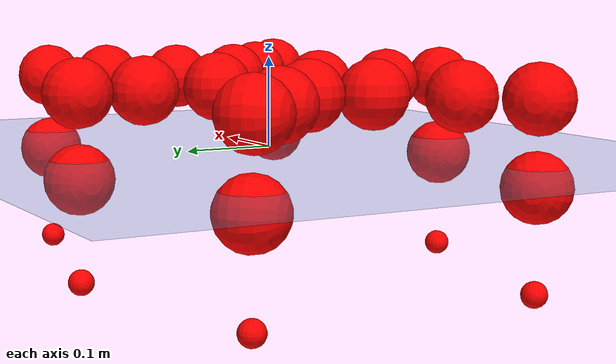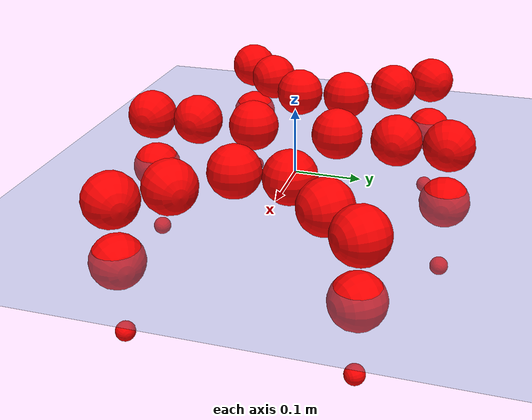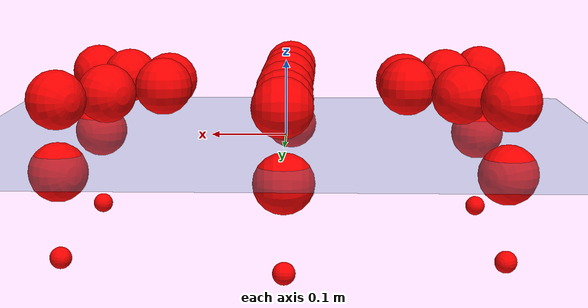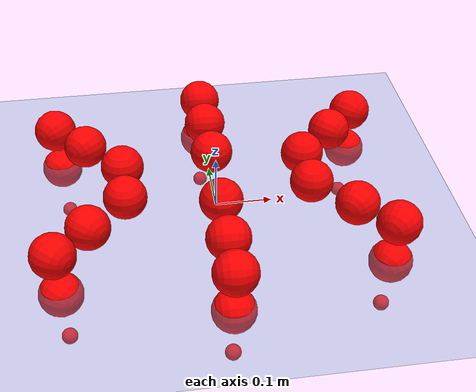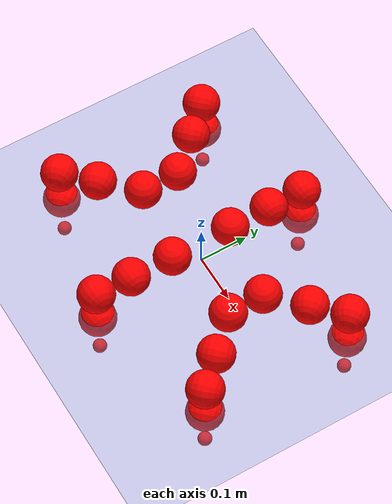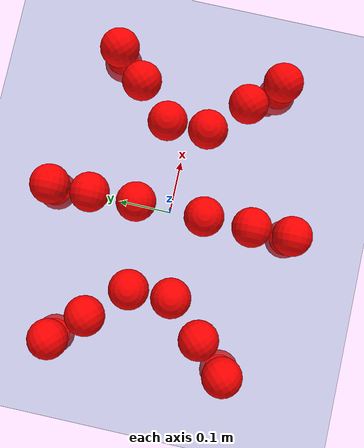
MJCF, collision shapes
<mujoco model="Golem">
  <compiler angle="radian" assetdir="assets" balanceinertia="true" inertiafromgeom="false"/>

  <option timestep="0.005" density="1.2" viscosity="2e-05"/>

  <size nkey="1"/>

  <visual>
    <quality shadowsize="8192"/>
    <map shadowclip="0.5"/>
  </visual>

  <default>
    <default class="/">
      <joint armature="0.01" damping="0.01" frictionloss="0.01"/>
      <geom contype="0" conaffinity="0" group="1" solref="-1000 -80"/>
      <site size="0.01 0.005 0.005" group="5"/>
      <general forcelimited="true" biastype="affine" gainprm="25" biasprm="0 -25 -0.5"/>
      <default class="visual">
        <geom type="mesh" group="2"/>
      </default>
      <default class="collision">
        <geom group="3"/>
      </default>
      <default class="foot">
        <geom size="0.01 0 0" condim="6" group="4" priority="1" solimp="0.015 1 0.01"/>
      </default>
      <default class="reward_collision_sphere">
        <geom group="5" rgba="1 0 0 1"/>
      </default>
    </default>
  </default>

  <asset>
    <texture type="skybox" colorspace="auto" name="//unnamed_texture_0" builtin="gradient" rgb1="0.95 0.95 0.95" rgb2="0.95 0.95 0.95" width="100" height="600"/>
    <texture type="2d" colorspace="auto" name="texplane" builtin="checker" rgb1="0.345 0.575 0.748" rgb2="0.345 0.575 0.748" markrgb="1 1 1" width="512" height="512"/>
    <material name="MatPlane" class="/" texture="texplane" texuniform="true" texrepeat="2 2" specular="0.9"/>
    <mesh name="body" class="/" file="body.stl" scale="0.001 0.001 0.001"/>
    <mesh name="coxa" class="/" file="coxa.stl" scale="0.001 0.001 0.001"/>
    <mesh name="femur" class="/" file="femur.stl" scale="0.001 0.001 0.001"/>
    <mesh name="tibia" class="/" file="tibia.stl" scale="0.001 0.001 0.001"/>
    <mesh name="tarsus" class="/" file="tarsus.stl" scale="0.001 0.001 0.001"/>
  </asset>

  <worldbody>
    <geom name="floor" class="/" size="100 100 0.125" type="plane" group="0" material="MatPlane"/>
    <light name="toplight_shadow" class="/" pos="0 0 5" dir="0.0990148 0.0990148 -0.990148" type="directional" ambient="0.04 0.04 0.04" diffuse="0.55 0.55 0.55" specular="0.12 0.12 0.12"/>
    <light name="toplight_fill" class="/" pos="0 0 5" dir="0.0990148 0.0990148 -0.990148" type="directional" castshadow="false" ambient="0.04 0.04 0.04" diffuse="0.3 0.3 0.3" specular="0.08 0.08 0.08"/>
    <body name="trunk" pos="0.000910306 0.00089129 0.000452971" quat="1 -3.95052e-05 2.14594e-05 0.000214336">
      <inertial pos="-0.000599528 -3.57705e-05 -0.00445204" quat="0.99999 -0.00205121 0.00271362 -0.00299884" mass="2.99009" diaginertia="0.0107799 0.00186273 0.0136043"/>
      <joint name="//unnamed_joint_0" type="free"/>
      <geom name="//unnamed_geom_1" class="/" pos="0 0 0.0683003" quat="1 0 0 0" type="mesh" rgba="0.9 0.9 0.9 1" mesh="body"/>
      <site name="imu" class="/" pos="0.130086 -0.00455738 0.105936" size="0.00933107"/>
      <camera name="track" class="/" pos="0 -1.42954 0" quat="0.707107 0.707107 0 0" mode="trackcom"/>
      <camera name="ego_camera" class="/" pos="0.132257 0 0.106719" quat="-0.5 -0.5 0.5 0.5"/>
      <body name="coxa_RR" pos="-0.180243 -0.0592375 0.068126" quat="0.382631 -8.35073e-05 0.000194565 -0.923901">
        <inertial pos="-1.12577e-06 0.000220389 0.000383518" quat="1 0.000528845 0.000514331 5.00262e-05" mass="0.163329" diaginertia="0.0110836 0.00186855 0.0137472"/>
        <joint name="coxa_joint_RR" class="/" pos="0 0 0" axis="-0.00209519 -0.00163776 -0.999996" range="-3.1365 3.1446" armature="0.00926383" damping="0.0104154" frictionloss="0.00944834"/>
        <geom name="//unnamed_geom_2" class="/" type="mesh" rgba="0.2 0.2 0.2 1" mesh="coxa"/>
        <geom name="//unnamed_geom_3" class="reward_collision_sphere" size="0.0373243" pos="-0.0305208 0 0"/>
        <body name="femur_RR" pos="0.0598395 0.00146205 4.54646e-05" quat="0.50012 -0.499714 0.500152 0.500015">
          <inertial pos="-0.000475677 -8.1208e-05 -0.0010641" quat="0.999994 0.00192683 -0.00196033 -0.00227259" mass="0.163525" diaginertia="0.0109562 0.00188281 0.0139578"/>
          <joint name="femur_joint_RR" class="/" pos="0 0 0" axis="0.00308626 -0.000586632 -0.999995" range="-3.14658 3.14144" armature="0.00942973" damping="0.00313425" frictionloss="0.009378"/>
          <geom name="//unnamed_geom_4" class="/" type="mesh" rgba="0.9 0.9 0.9 1" mesh="femur"/>
          <geom name="//unnamed_geom_5" class="reward_collision_sphere" size="0.0373243"/>
          <body name="tibia_RR" pos="0.000764225 -0.0773095 0.0001043" quat="1.41134e-05 1 -1.01338e-05 2.8111e-05">
            <inertial pos="0.000275692 0.000422239 0.000292037" quat="0.99999 0.0023352 -0.00374865 0.000185879" mass="0.164193" diaginertia="0.010996 0.00187495 0.0140239"/>
            <joint name="tibia_joint_RR" class="/" pos="0 0 0" axis="-0.00158358 -0.00100289 0.999998" range="-3.12094 3.13717" armature="0.00961627" damping="0" frictionloss="0.00964579"/>
            <geom name="//unnamed_geom_6" class="/" type="mesh" rgba="0.2 0.2 0.2 1" mesh="tibia"/>
            <geom name="//unnamed_geom_7" class="reward_collision_sphere" size="0.0373243"/>
            <body name="tarsus_RR" pos="0.089393 -0.000480661 -0.00121294" quat="1 0.000142214 -1.60193e-05 -0.000139796">
              <inertial pos="0.0620226 0.000625816 6.992e-05" quat="0.499888 0.500136 0.502484 0.497479" mass="0.166636" diaginertia="0.0109572 0.00188633 0.0139729"/>
              <joint name="tarsus_joint_RR" class="/" pos="0 0 0" axis="0.00238739 0.000345707 0.999997" stiffness="0.000357268" range="-3.13201 3.15594" armature="0.0094777" damping="0.0407569" frictionloss="0.00950144"/>
              <geom name="//unnamed_geom_8" class="/" type="mesh" rgba="0.9 0.9 0.9 1" mesh="tarsus"/>
              <geom name="foot_1" class="foot" size="0.00911126" pos="0.113944 0 0" quat="0 -0.707107 0 0.707107"/>
              <geom name="//unnamed_geom_10" class="reward_collision_sphere" size="0.0373243"/>
              <geom name="//unnamed_geom_11" class="reward_collision_sphere" size="0.0139966" pos="0.109366 0 0"/>
              <site name="foot_1" class="foot" pos="0.113944 0 0" quat="0 -0.707107 0 0.707107" size="0.00933107"/>
            </body>
          </body>
        </body>
      </body>
      <body name="coxa_RM" pos="-0.000419904 -0.095664 0.0679787" quat="0.70716 -0.000173011 -0.000143425 -0.707054">
        <inertial pos="0.000768411 0.00040086 0.000229485" quat="0.999993 -0.000398245 0.00163025 0.00335567" mass="0.162383" diaginertia="0.0109024 0.0018675 0.013914"/>
        <joint name="coxa_joint_RM" class="/" pos="0 0 0" axis="-0.000163527 -0.000304202 -1" range="-3.14805 3.1383" armature="0.00944665" damping="0.010162" frictionloss="0.00953542"/>
        <geom name="//unnamed_geom_12" class="/" type="mesh" rgba="0.2 0.2 0.2 1" mesh="coxa"/>
        <geom name="//unnamed_geom_13" class="reward_collision_sphere" size="0.0373243" pos="-0.0305208 0 0"/>
        <body name="femur_RM" pos="0.059036 -0.000708389 -0.000634446" quat="0.499645 -0.500312 0.499875 0.500167">
          <inertial pos="0.000210001 -0.000246831 -5.26075e-05" quat="0.999996 6.39051e-05 0.00259879 0.000807096" mass="0.161324" diaginertia="0.0109467 0.00187637 0.0137704"/>
          <joint name="femur_joint_RM" class="/" pos="0 0 0" axis="0.00128451 -0.00250234 -0.999996" range="-3.13914 3.14156" armature="0.00928246" damping="0.0123235" frictionloss="0.00940182"/>
          <geom name="//unnamed_geom_14" class="/" type="mesh" rgba="0.9 0.9 0.9 1" mesh="femur"/>
          <geom name="//unnamed_geom_15" class="reward_collision_sphere" size="0.0373243"/>
          <body name="tibia_RM" pos="-0.000272635 -0.0755172 -0.000110911" quat="1.74935e-06 1 -3.49881e-06 -4.66094e-06">
            <inertial pos="-0.000499048 -4.13298e-05 0.000838841" quat="0.999999 0.00125537 0.000960726 -0.0001646" mass="0.161639" diaginertia="0.0108776 0.00189557 0.0138389"/>
            <joint name="tibia_joint_RM" class="/" pos="0 0 0" axis="0.006492 -0.000908426 0.999979" range="-3.1433 3.14343" armature="0.00923281" damping="0.0125049" frictionloss="0.0094035"/>
            <geom name="//unnamed_geom_16" class="/" type="mesh" rgba="0.2 0.2 0.2 1" mesh="tibia"/>
            <geom name="//unnamed_geom_17" class="reward_collision_sphere" size="0.0373243"/>
            <body name="tarsus_RM" pos="0.088127 -0.000210224 0.000966478" quat="1 -1.06231e-05 0.00013763 -8.85489e-05">
              <inertial pos="0.06074 4.00098e-05 0.000489266" quat="0.498897 0.498638 0.501491 0.500968" mass="0.162353" diaginertia="0.0109412 0.00186838 0.0137415"/>
              <joint name="tarsus_joint_RM" class="/" pos="0 0 0" axis="-0.00240206 0.00272074 0.999993" stiffness="0.000466627" range="-3.14542 3.13608" armature="0.00929978" damping="0.00768366" frictionloss="0.0091876"/>
              <geom name="//unnamed_geom_18" class="/" type="mesh" rgba="0.9 0.9 0.9 1" mesh="tarsus"/>
              <geom name="foot_2" class="foot" size="0.00931029" pos="0.113944 0 0" quat="0 -0.707107 0 0.707107"/>
              <geom name="//unnamed_geom_20" class="reward_collision_sphere" size="0.0373243"/>
              <geom name="//unnamed_geom_21" class="reward_collision_sphere" size="0.0139966" pos="0.109366 0 0"/>
              <site name="foot_2" class="foot" pos="0.113944 0 0" quat="0 -0.707107 0 0.707107" size="0.00933107"/>
            </body>
          </body>
        </body>
      </body>
      <body name="coxa_RF" pos="0.181281 -0.0597319 0.0684741" quat="0.923896 6.58035e-06 -3.548e-05 -0.382645">
        <inertial pos="-0.000594937 0.000483876 -0.000178479" quat="0.999998 0.00145979 0.00048011 0.00113157" mass="0.164487" diaginertia="0.0107438 0.00185521 0.0138141"/>
        <joint name="coxa_joint_RF" class="/" pos="0 0 0" axis="-0.0017639 -0.00239438 -0.999996" range="-3.13083 3.13852" armature="0.00901382" damping="0.00787595" frictionloss="0.00928053"/>
        <geom name="//unnamed_geom_22" class="/" type="mesh" rgba="0.2 0.2 0.2 1" mesh="coxa"/>
        <geom name="//unnamed_geom_23" class="reward_collision_sphere" size="0.0373243" pos="-0.0305208 0 0"/>
        <body name="femur_RF" pos="0.0597426 -0.000393241 -0.00104078" quat="0.499985 -0.499966 0.50005 0.5">
          <inertial pos="-0.00065178 0.000235453 -0.00072255" quat="0.999999 -7.14583e-05 0.000916484 -0.00101986" mass="0.164047" diaginertia="0.0107569 0.00187259 0.0138284"/>
          <joint name="femur_joint_RF" class="/" pos="0 0 0" axis="0.000745015 0.00464256 -0.999989" range="-3.13047 3.15571" armature="0.00923946" damping="0.0109146" frictionloss="0.0091217"/>
          <geom name="//unnamed_geom_24" class="/" type="mesh" rgba="0.9 0.9 0.9 1" mesh="femur"/>
          <geom name="//unnamed_geom_25" class="reward_collision_sphere" size="0.0373243"/>
          <body name="tibia_RF" pos="-0.000326842 -0.0771738 -0.00118971" quat="-6.83483e-05 1 -6.3863e-06 -7.77756e-05">
            <inertial pos="-1.81366e-05 0.000574329 0.000284867" quat="0.999991 -0.00385403 0.00148681 -0.00126803" mass="0.160791" diaginertia="0.0108899 0.00185822 0.013864"/>
            <joint name="tibia_joint_RF" class="/" pos="0 0 0" axis="0.00330081 0.00323347 0.999989" stiffness="0.000273726" range="-3.1438 3.15369" armature="0.00939975" damping="0" frictionloss="0.00919821"/>
            <geom name="//unnamed_geom_26" class="/" type="mesh" rgba="0.2 0.2 0.2 1" mesh="tibia"/>
            <geom name="//unnamed_geom_27" class="reward_collision_sphere" size="0.0373243"/>
            <body name="tarsus_RF" pos="0.088792 -0.000438238 0.00073996" quat="1 -2.66084e-05 0.000321025 0.000170734">
              <inertial pos="0.0604339 0.000221364 0.00026275" quat="0.500287 0.500108 0.498045 0.501553" mass="0.162661" diaginertia="0.0108471 0.00188524 0.0139504"/>
              <joint name="tarsus_joint_RF" class="/" pos="0 0 0" axis="0.00463128 0.00186716 0.999988" range="-3.12388 3.13797" armature="0.00900891" damping="0.00185119" frictionloss="0.00975451"/>
              <geom name="//unnamed_geom_28" class="/" type="mesh" rgba="0.9 0.9 0.9 1" mesh="tarsus"/>
              <geom name="foot_3" class="foot" size="0.00937703" pos="0.113944 0 0" quat="0 -0.707107 0 0.707107"/>
              <geom name="//unnamed_geom_30" class="reward_collision_sphere" size="0.0373243"/>
              <geom name="//unnamed_geom_31" class="reward_collision_sphere" size="0.0139966" pos="0.109366 0 0"/>
              <site name="foot_3" class="foot" pos="0.113944 0 0" quat="0 -0.707107 0 0.707107" size="0.00933107"/>
            </body>
          </body>
        </body>
      </body>
      <body name="coxa_LR" pos="-0.181408 0.0619868 0.0701067" quat="0.382643 2.91568e-05 -2.88382e-05 0.923896">
        <inertial pos="-5.69652e-05 0.00026965 -2.53839e-05" quat="0.999994 0.000553229 -0.00142027 -0.00298027" mass="0.160964" diaginertia="0.0107212 0.00183611 0.0137153"/>
        <joint name="coxa_joint_LR" class="/" pos="0 0 0" axis="0.000530944 -0.000750849 -1" range="-3.14525 3.15398" armature="0.00901799" damping="0.0104926" frictionloss="0.00898063"/>
        <geom name="//unnamed_geom_32" class="/" type="mesh" rgba="0.2 0.2 0.2 1" mesh="coxa"/>
        <geom name="//unnamed_geom_33" class="reward_collision_sphere" size="0.0373243" pos="-0.0305208 0 0"/>
        <body name="femur_LR" pos="0.0615111 -0.00276778 -0.00129031" quat="0.500025 -0.499996 0.499961 0.500018">
          <inertial pos="0.000129604 8.48075e-05 0.000209805" quat="0.999991 0.00321814 -0.00191233 -0.00213246" mass="0.164245" diaginertia="0.0110588 0.00190695 0.0139409"/>
          <joint name="femur_joint_LR" class="/" pos="0 0 0" axis="-0.000491011 -0.000634576 1" range="-3.14605 3.15229" armature="0.00894112" damping="0.00376982" frictionloss="0.00919997"/>
          <geom name="//unnamed_geom_34" class="/" type="mesh" rgba="0.9 0.9 0.9 1" mesh="femur"/>
          <geom name="//unnamed_geom_35" class="reward_collision_sphere" size="0.0373243"/>
          <body name="tibia_LR" pos="0.000903057 -0.0781364 -0.00112" quat="0.000225078 1 0.000170616 -0.00016576">
            <inertial pos="-0.00120888 0.000679063 0.000200615" quat="0.999996 -0.00229021 -0.000943876 0.00154429" mass="0.164748" diaginertia="0.0110566 0.00186081 0.0137538"/>
            <joint name="tibia_joint_LR" class="/" pos="0 0 0" axis="-0.000331757 -4.35785e-05 -1" range="-3.1424 3.14169" armature="0.00940019" damping="0.00355941" frictionloss="0.00893465"/>
            <geom name="//unnamed_geom_36" class="/" type="mesh" rgba="0.2 0.2 0.2 1" mesh="tibia"/>
            <geom name="//unnamed_geom_37" class="reward_collision_sphere" size="0.0373243"/>
            <body name="tarsus_LR" pos="0.089639 0.000214523 0.00214498" quat="1 6.23525e-05 -0.000274865 6.81109e-05">
              <inertial pos="0.0623932 0.00135092 0.000103985" quat="0.501816 0.498165 0.500855 0.499156" mass="0.160354" diaginertia="0.0107097 0.00184129 0.0136376"/>
              <joint name="tarsus_joint_LR" class="/" pos="0 0 0" axis="-0.000257605 -3.50244e-05 -1" stiffness="0.00259364" range="-3.14682 3.13022" armature="0.00895586" damping="0.0272692" frictionloss="0.00932677"/>
              <geom name="//unnamed_geom_38" class="/" type="mesh" rgba="0.9 0.9 0.9 1" mesh="tarsus"/>
              <geom name="foot_4" class="foot" size="0.00938182" pos="0.113944 0 0" quat="0.707107 0 -0.707107 0"/>
              <geom name="//unnamed_geom_40" class="reward_collision_sphere" size="0.0373243"/>
              <geom name="//unnamed_geom_41" class="reward_collision_sphere" size="0.0139966" pos="0.109366 0 0"/>
              <site name="foot_4" class="foot" pos="0.113944 0 0" quat="0.707107 0 -0.707107 0" size="0.00933107"/>
            </body>
          </body>
        </body>
      </body>
      <body name="coxa_LM" pos="-0.00026029 0.0932972 0.0688929" quat="0.707097 0.000343673 0.000131931 0.707116">
        <inertial pos="2.97719e-05 -8.6289e-05 0.00191576" quat="0.999998 -0.00197735 -0.000403978 0.000886409" mass="0.161282" diaginertia="0.0108693 0.00185287 0.0136877"/>
        <joint name="coxa_joint_LM" class="/" pos="0 0 0" axis="-2.99994e-05 -0.00155831 -0.999999" range="-3.14243 3.14154" armature="0.00978002" damping="0" frictionloss="0.0094083"/>
        <geom name="//unnamed_geom_42" class="/" type="mesh" rgba="0.2 0.2 0.2 1" mesh="coxa"/>
        <geom name="//unnamed_geom_43" class="reward_collision_sphere" size="0.0373243" pos="-0.0305208 0 0"/>
        <body name="femur_LM" pos="0.0568187 0.00127187 -0.000908359" quat="0.50036 -0.499762 0.500153 0.499724">
          <inertial pos="0.000296974 -4.65616e-05 -4.7664e-05" quat="0.99999 -0.00109089 0.00321433 -0.0028646" mass="0.160594" diaginertia="0.0107148 0.00184611 0.0137047"/>
          <joint name="femur_joint_LM" class="/" pos="0 0 0" axis="-0.000530107 0.00142422 0.999999" range="-3.15806 3.14674" armature="0.00888412" damping="0.00318228" frictionloss="0.00930056"/>
          <geom name="//unnamed_geom_44" class="/" type="mesh" rgba="0.9 0.9 0.9 1" mesh="femur"/>
          <geom name="//unnamed_geom_45" class="reward_collision_sphere" size="0.0373243"/>
          <body name="tibia_LM" pos="-0.000171878 -0.0749638 0.000939782" quat="9.99918e-05 1 3.14428e-05 2.11252e-05">
            <inertial pos="0.000335481 -0.00161003 0.000985306" quat="1 5.32501e-05 -0.00056188 0.000327269" mass="0.162867" diaginertia="0.0110125 0.00187398 0.0137545"/>
            <joint name="tibia_joint_LM" class="/" pos="0 0 0" axis="0.00224149 0.0050411 -0.999985" range="-3.13311 3.14023" armature="0.0089488" damping="0.000230135" frictionloss="0.00965746"/>
            <geom name="//unnamed_geom_46" class="/" type="mesh" rgba="0.2 0.2 0.2 1" mesh="tibia"/>
            <geom name="//unnamed_geom_47" class="reward_collision_sphere" size="0.0373243"/>
            <body name="tarsus_LM" pos="0.0902354 -3.43179e-05 -0.00151392" quat="1 -0.000136757 -9.284e-05 0.000382336">
              <inertial pos="0.061754 0.000169808 -0.00102187" quat="0.49963 0.499941 0.500133 0.500296" mass="0.163771" diaginertia="0.0109454 0.00190898 0.0140175"/>
              <joint name="tarsus_joint_LM" class="/" pos="0 0 0" axis="0.00473173 -0.000975073 -0.999988" range="-3.16344 3.14047" armature="0.00941031" damping="0" frictionloss="0.009303"/>
              <geom name="//unnamed_geom_48" class="/" type="mesh" rgba="0.9 0.9 0.9 1" mesh="tarsus"/>
              <geom name="foot_5" class="foot" size="0.00936094" pos="0.113944 0 0" quat="0.707107 0 -0.707107 0"/>
              <geom name="//unnamed_geom_50" class="reward_collision_sphere" size="0.0373243"/>
              <geom name="//unnamed_geom_51" class="reward_collision_sphere" size="0.0139966" pos="0.109366 0 0"/>
              <site name="foot_5" class="foot" pos="0.113944 0 0" quat="0.707107 0 -0.707107 0" size="0.00933107"/>
            </body>
          </body>
        </body>
      </body>
      <body name="coxa_LF" pos="0.18071 0.0600282 0.0694813" quat="0.923906 -0.000112241 2.17719e-05 0.382619">
        <inertial pos="0.000289264 0.000762872 0.000145197" quat="0.999999 0.000507895 0.000978485 0.000581219" mass="0.165244" diaginertia="0.0111292 0.00186803 0.0140134"/>
        <joint name="coxa_joint_LF" class="/" pos="0 0 0" axis="0.000189739 5.67918e-05 -1" range="-3.14153 3.13402" armature="0.00987715" damping="0.00714473" frictionloss="0.00947242"/>
        <geom name="//unnamed_geom_52" class="/" type="mesh" rgba="0.2 0.2 0.2 1" mesh="coxa"/>
        <geom name="//unnamed_geom_53" class="reward_collision_sphere" size="0.0373243" pos="-0.0305208 0 0"/>
        <body name="femur_LF" pos="0.059975 -0.000789252 -0.00136281" quat="0.499937 -0.499898 0.50013 0.500034">
          <inertial pos="-0.000945801 -0.000586337 0.000919108" quat="1 0.000141347 0.000734549 -0.000132907" mass="0.162204" diaginertia="0.0110176 0.00188986 0.0138794"/>
          <joint name="femur_joint_LF" class="/" pos="0 0 0" axis="0.00241001 -0.00538886 0.999983" range="-3.14386 3.12763" armature="0.00937743" damping="0.00326313" frictionloss="0.00955293"/>
          <geom name="//unnamed_geom_54" class="/" type="mesh" rgba="0.9 0.9 0.9 1" mesh="femur"/>
          <geom name="//unnamed_geom_55" class="reward_collision_sphere" size="0.0373243"/>
          <body name="tibia_LF" pos="0.00109495 -0.0766056 0.000679466" quat="-7.28445e-06 1 -0.000140477 4.39575e-05">
            <inertial pos="0.000460949 -0.000161836 -5.40882e-05" quat="0.999999 0.000627654 -0.00119411 0.00081105" mass="0.162399" diaginertia="0.0110008 0.00186392 0.0138116"/>
            <joint name="tibia_joint_LF" class="/" pos="0 0 0" axis="-0.000444805 -0.00130495 -0.999999" range="-3.13215 3.13259" armature="0.00887079" damping="0.000443492" frictionloss="0.00939596"/>
            <geom name="//unnamed_geom_56" class="/" type="mesh" rgba="0.2 0.2 0.2 1" mesh="tibia"/>
            <geom name="//unnamed_geom_57" class="reward_collision_sphere" size="0.0373243"/>
            <body name="tarsus_LF" pos="0.0900354 -0.000846981 0.000342072" quat="1 0.00019588 -0.000522334 0.000206955">
              <inertial pos="0.0633973 0.000370234 0.000266374" quat="0.500817 0.499342 0.499877 0.499962" mass="0.163228" diaginertia="0.0108028 0.00184392 0.0138109"/>
              <joint name="tarsus_joint_LF" class="/" pos="0 0 0" axis="0.00268694 0.00623007 -0.999977" stiffness="0.0277021" range="-3.13654 3.14439" armature="0.00935547" damping="0.0253974" frictionloss="0.00899029"/>
              <geom name="//unnamed_geom_58" class="/" type="mesh" rgba="0.9 0.9 0.9 1" mesh="tarsus"/>
              <geom name="foot_6" class="foot" size="0.00933141" pos="0.113944 0 0" quat="0.707107 0 -0.707107 0"/>
              <geom name="//unnamed_geom_60" class="reward_collision_sphere" size="0.0373243"/>
              <geom name="//unnamed_geom_61" class="reward_collision_sphere" size="0.0139966" pos="0.109366 0 0"/>
              <site name="foot_6" class="foot" pos="0.113944 0 0" quat="0.707107 0 -0.707107 0" size="0.00933107"/>
            </body>
          </body>
        </body>
      </body>
    </body>
  </worldbody>

  <contact>
    <pair class="/" geom1="floor" geom2="foot_1" name="//unnamed_contact_0"/>
    <pair class="/" geom1="floor" geom2="foot_2" name="//unnamed_contact_1"/>
    <pair class="/" geom1="floor" geom2="foot_3" name="//unnamed_contact_2"/>
    <pair class="/" geom1="floor" geom2="foot_4" name="//unnamed_contact_3"/>
    <pair class="/" geom1="floor" geom2="foot_5" name="//unnamed_contact_4"/>
    <pair class="/" geom1="floor" geom2="foot_6" name="//unnamed_contact_5"/>
  </contact>

  <actuator>
    <general name="coxa_joint_RR" class="/" joint="coxa_joint_RR" forcerange="-6.70658 6.70658" gainprm="22.5227" biasprm="0 -22.5227 -0.498716"/>
    <general name="femur_joint_RR" class="/" joint="femur_joint_RR" forcerange="-6.65958 6.65958" gainprm="22.5227" biasprm="0 -22.5227 -0.498716"/>
    <general name="tibia_joint_RR" class="/" joint="tibia_joint_RR" forcerange="-6.59709 6.59709" gainprm="22.5227" biasprm="0 -22.5227 -0.498716"/>
    <general name="tarsus_joint_RR" class="/" joint="tarsus_joint_RR" forcerange="-6.60077 6.60077" gainprm="22.5227" biasprm="0 -22.5227 -0.498716"/>
    <general name="coxa_joint_RM" class="/" joint="coxa_joint_RM" forcerange="-6.80809 6.80809" gainprm="22.5227" biasprm="0 -22.5227 -0.498716"/>
    <general name="femur_joint_RM" class="/" joint="femur_joint_RM" forcerange="-6.80664 6.80664" gainprm="22.5227" biasprm="0 -22.5227 -0.498716"/>
    <general name="tibia_joint_RM" class="/" joint="tibia_joint_RM" forcerange="-6.81061 6.81061" gainprm="22.5227" biasprm="0 -22.5227 -0.498716"/>
    <general name="tarsus_joint_RM" class="/" joint="tarsus_joint_RM" forcerange="-6.99192 6.99192" gainprm="22.5227" biasprm="0 -22.5227 -0.498716"/>
    <general name="coxa_joint_RF" class="/" joint="coxa_joint_RF" forcerange="-6.94126 6.94126" gainprm="22.5227" biasprm="0 -22.5227 -0.498716"/>
    <general name="femur_joint_RF" class="/" joint="femur_joint_RF" forcerange="-6.82804 6.82804" gainprm="22.5227" biasprm="0 -22.5227 -0.498716"/>
    <general name="tibia_joint_RF" class="/" joint="tibia_joint_RF" forcerange="-6.89172 6.89172" gainprm="22.5227" biasprm="0 -22.5227 -0.498716"/>
    <general name="tarsus_joint_RF" class="/" joint="tarsus_joint_RF" forcerange="-6.67731 6.67731" gainprm="22.5227" biasprm="0 -22.5227 -0.498716"/>
    <general name="coxa_joint_LR" class="/" joint="coxa_joint_LR" forcerange="-6.79618 6.79618" gainprm="22.5227" biasprm="0 -22.5227 -0.498716"/>
    <general name="femur_joint_LR" class="/" joint="femur_joint_LR" forcerange="-6.9337 6.9337" gainprm="22.5227" biasprm="0 -22.5227 -0.498716"/>
    <general name="tibia_joint_LR" class="/" joint="tibia_joint_LR" forcerange="-6.9385 6.9385" gainprm="22.5227" biasprm="0 -22.5227 -0.498716"/>
    <general name="tarsus_joint_LR" class="/" joint="tarsus_joint_LR" forcerange="-7.04194 7.04194" gainprm="22.5227" biasprm="0 -22.5227 -0.498716"/>
    <general name="coxa_joint_LM" class="/" joint="coxa_joint_LM" forcerange="-6.93534 6.93534" gainprm="22.5227" biasprm="0 -22.5227 -0.498716"/>
    <general name="femur_joint_LM" class="/" joint="femur_joint_LM" forcerange="-6.72171 6.72171" gainprm="22.5227" biasprm="0 -22.5227 -0.498716"/>
    <general name="tibia_joint_LM" class="/" joint="tibia_joint_LM" forcerange="-7.01427 7.01427" gainprm="22.5227" biasprm="0 -22.5227 -0.498716"/>
    <general name="tarsus_joint_LM" class="/" joint="tarsus_joint_LM" forcerange="-6.68664 6.68664" gainprm="22.5227" biasprm="0 -22.5227 -0.498716"/>
    <general name="coxa_joint_LF" class="/" joint="coxa_joint_LF" forcerange="-6.8315 6.8315" gainprm="22.5227" biasprm="0 -22.5227 -0.498716"/>
    <general name="femur_joint_LF" class="/" joint="femur_joint_LF" forcerange="-6.92655 6.92655" gainprm="22.5227" biasprm="0 -22.5227 -0.498716"/>
    <general name="tibia_joint_LF" class="/" joint="tibia_joint_LF" forcerange="-6.58593 6.58593" gainprm="22.5227" biasprm="0 -22.5227 -0.498716"/>
    <general name="tarsus_joint_LF" class="/" joint="tarsus_joint_LF" forcerange="-6.91887 6.91887" gainprm="22.5227" biasprm="0 -22.5227 -0.498716"/>
  </actuator>

  <sensor>
    <gyro site="imu" name="imu_angular_velocity"/>
    <velocimeter site="imu" name="imu_linear_velocity"/>
    <framelinvel objtype="site" objname="foot_1" name="foot_1_global_linear_velocity"/>
    <framelinvel objtype="site" objname="foot_2" name="foot_2_global_linear_velocity"/>
    <framelinvel objtype="site" objname="foot_3" name="foot_3_global_linear_velocity"/>
    <framelinvel objtype="site" objname="foot_4" name="foot_4_global_linear_velocity"/>
    <framelinvel objtype="site" objname="foot_5" name="foot_5_global_linear_velocity"/>
    <framelinvel objtype="site" objname="foot_6" name="foot_6_global_linear_velocity"/>
  </sensor>

  <keyframe>
    <key name="home" qpos="0 0 0.1457 1 0 0 0 0 0 0 0 0 0 0 0 0 0 0 0 0 0 0 0 0 0 0 0 0 0 0 0"/>
  </keyframe>
</mujoco>
